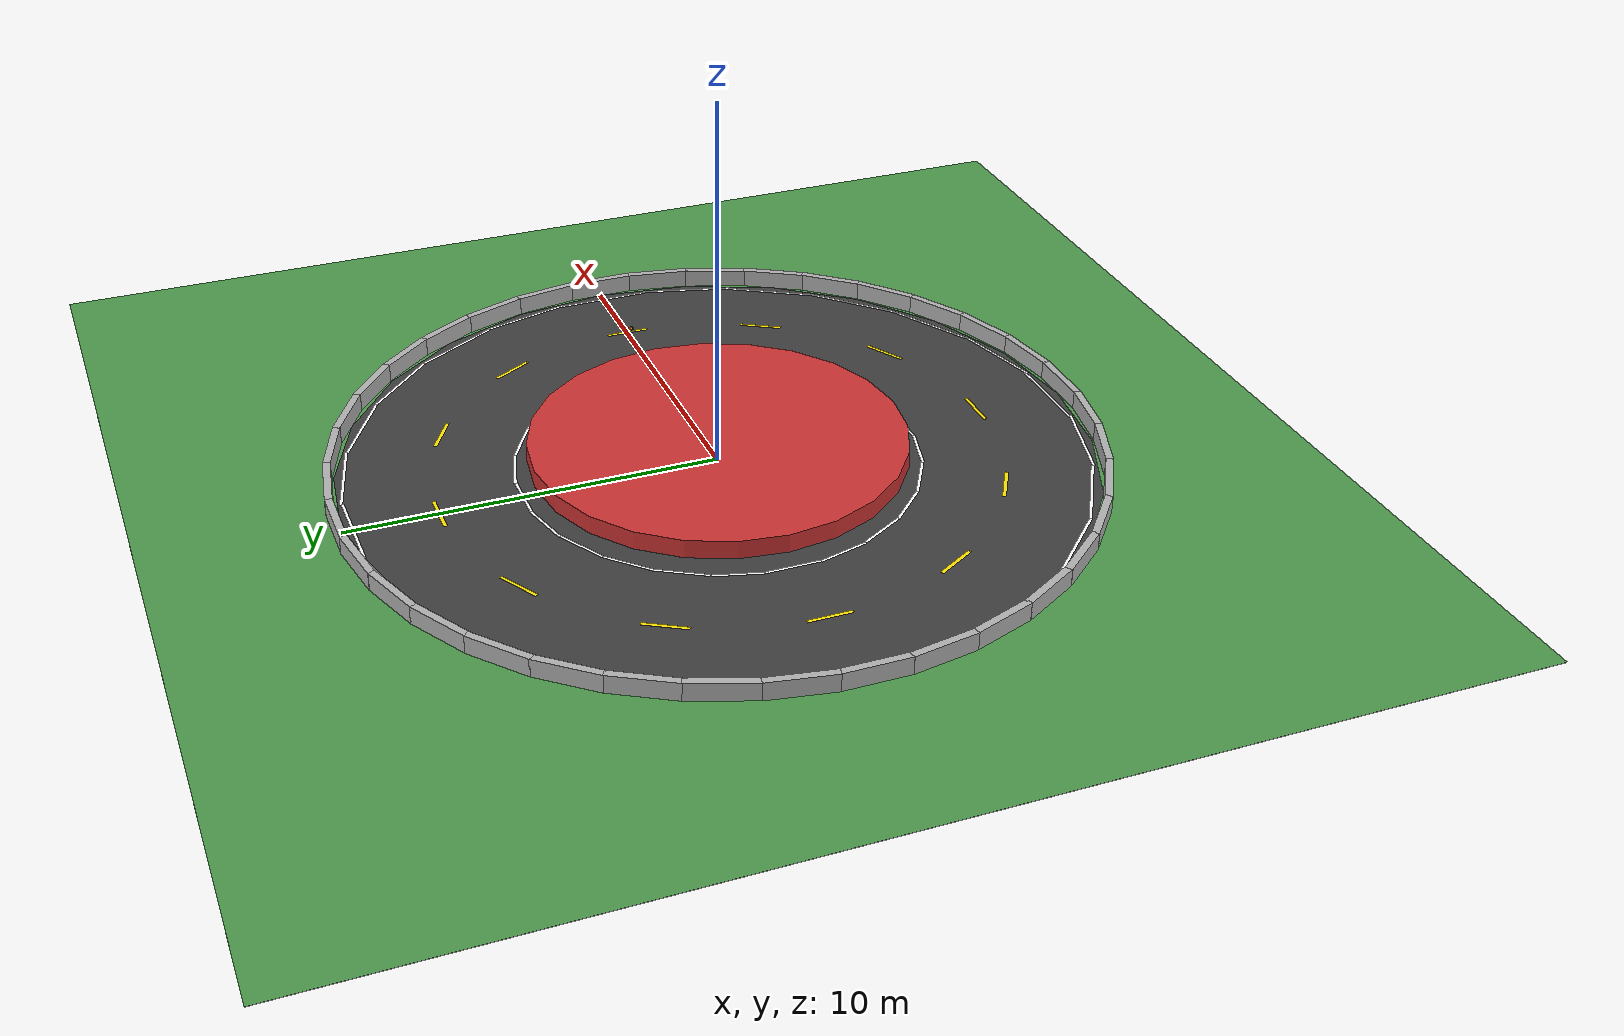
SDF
<?xml version="1.0" ?>
<sdf version="1.8">
  <world name="drift_track">

    <physics name="1ms" type="ignored">
      <max_step_size>0.001</max_step_size>
      <real_time_factor>1.0</real_time_factor>
    </physics>

    <plugin filename="gz-sim-physics-system"
            name="gz::sim::systems::Physics">
    </plugin>
    <plugin filename="gz-sim-scene-broadcaster-system"
            name="gz::sim::systems::SceneBroadcaster">
    </plugin>
    <plugin filename="gz-sim-user-commands-system"
            name="gz::sim::systems::UserCommands">
    </plugin>
    <plugin filename="gz-sim-sensors-system"
            name="gz::sim::systems::Sensors">
      <render_engine>ogre2</render_engine>
    </plugin>
    <plugin filename="gz-sim-imu-system"
            name="gz::sim::systems::Imu">
    </plugin>

    <!-- Lighting -->
    <light type="directional" name="sun">
      <cast_shadows>true</cast_shadows>
      <pose>0 0 15 0 0 0</pose>
      <diffuse>1.0 1.0 0.95 1</diffuse>
      <specular>0.3 0.3 0.3 1</specular>
      <direction>-0.3 0.1 -0.9</direction>
    </light>

    <light type="directional" name="ambient_light">
      <pose>0 0 10 0 0 0</pose>
      <diffuse>0.4 0.4 0.45 1</diffuse>
      <specular>0 0 0 1</specular>
      <direction>0 0 -1</direction>
    </light>

    <!-- ==================== GRASS (30x30m) ==================== -->
    <model name="grass">
      <static>true</static>
      <pose>0 0 0 0 0 0</pose>
      <link name="link">
        <collision name="collision">
          <geometry>
            <box>
              <size>30 30 0.01</size>
            </box>
          </geometry>
          <surface>
            <friction>
              <ode>
                <mu>0.6</mu>
                <mu2>0.6</mu2>
              </ode>
            </friction>
          </surface>
        </collision>
        <visual name="visual">
          <geometry>
            <box>
              <size>30 30 0.01</size>
            </box>
          </geometry>
          <material>
            <ambient>0.2 0.5 0.2 1</ambient>
            <diffuse>0.3 0.6 0.3 1</diffuse>
            <specular>0.1 0.1 0.1 1</specular>
          </material>
        </visual>
      </link>
    </model>

    <!-- ==================== CIRCULAR ROAD (10m radius) ==================== -->
    <model name="road">
      <static>true</static>
      <pose>0 0 0.005 0 0 0</pose>
      <link name="link">
        <collision name="collision">
          <geometry>
            <cylinder>
              <radius>10</radius>
              <length>0.01</length>
            </cylinder>
          </geometry>
          <surface>
            <friction>
              <ode>
                <mu>1.0</mu>
                <mu2>1.0</mu2>
              </ode>
            </friction>
          </surface>
        </collision>
        <visual name="visual">
          <geometry>
            <cylinder>
              <radius>10</radius>
              <length>0.01</length>
            </cylinder>
          </geometry>
          <material>
            <ambient>0.15 0.15 0.15 1</ambient>
            <diffuse>0.25 0.25 0.25 1</diffuse>
            <specular>0.1 0.1 0.1 1</specular>
          </material>
        </visual>
      </link>
    </model>

    <!-- ==================== CENTER OBSTACLE (5m radius cylinder) ==================== -->
    <model name="center_obstacle">
      <static>true</static>
      <pose>0 0 0.5 0 0 0</pose>
      <link name="link">
        <collision name="collision">
          <geometry>
            <cylinder>
              <radius>5</radius>
              <length>0.5</length>
            </cylinder>
          </geometry>
        </collision>
        <visual name="visual">
          <geometry>
            <cylinder>
              <radius>5</radius>
              <length>0.5</length>
            </cylinder>
          </geometry>
          <material>
            <ambient>0.6 0.1 0.1 1</ambient>
            <diffuse>0.8 0.2 0.2 1</diffuse>
            <specular>0.3 0.3 0.3 1</specular>
          </material>
        </visual>
      </link>
    </model>

    <!-- ==================== LANE MARKINGS ==================== -->
    <!-- Inner edge line (white) at 5.3m radius - 24 segments -->
    <model name="inner_line_00"><static>true</static><pose>5.3 0 0.012 0 0 0</pose>
      <link name="link"><visual name="v"><geometry><box><size>0.08 1.4 0.001</size></box></geometry>
      <material><ambient>1 1 1 1</ambient><diffuse>1 1 1 1</diffuse></material></visual></link></model>
    <model name="inner_line_01"><static>true</static><pose>5.14 1.37 0.012 0 0 0.2618</pose>
      <link name="link"><visual name="v"><geometry><box><size>0.08 1.4 0.001</size></box></geometry>
      <material><ambient>1 1 1 1</ambient><diffuse>1 1 1 1</diffuse></material></visual></link></model>
    <model name="inner_line_02"><static>true</static><pose>4.59 2.65 0.012 0 0 0.5236</pose>
      <link name="link"><visual name="v"><geometry><box><size>0.08 1.4 0.001</size></box></geometry>
      <material><ambient>1 1 1 1</ambient><diffuse>1 1 1 1</diffuse></material></visual></link></model>
    <model name="inner_line_03"><static>true</static><pose>3.75 3.75 0.012 0 0 0.7854</pose>
      <link name="link"><visual name="v"><geometry><box><size>0.08 1.4 0.001</size></box></geometry>
      <material><ambient>1 1 1 1</ambient><diffuse>1 1 1 1</diffuse></material></visual></link></model>
    <model name="inner_line_04"><static>true</static><pose>2.65 4.59 0.012 0 0 1.0472</pose>
      <link name="link"><visual name="v"><geometry><box><size>0.08 1.4 0.001</size></box></geometry>
      <material><ambient>1 1 1 1</ambient><diffuse>1 1 1 1</diffuse></material></visual></link></model>
    <model name="inner_line_05"><static>true</static><pose>1.37 5.14 0.012 0 0 1.3090</pose>
      <link name="link"><visual name="v"><geometry><box><size>0.08 1.4 0.001</size></box></geometry>
      <material><ambient>1 1 1 1</ambient><diffuse>1 1 1 1</diffuse></material></visual></link></model>
    <model name="inner_line_06"><static>true</static><pose>0 5.3 0.012 0 0 1.5708</pose>
      <link name="link"><visual name="v"><geometry><box><size>0.08 1.4 0.001</size></box></geometry>
      <material><ambient>1 1 1 1</ambient><diffuse>1 1 1 1</diffuse></material></visual></link></model>
    <model name="inner_line_07"><static>true</static><pose>-1.37 5.14 0.012 0 0 1.8326</pose>
      <link name="link"><visual name="v"><geometry><box><size>0.08 1.4 0.001</size></box></geometry>
      <material><ambient>1 1 1 1</ambient><diffuse>1 1 1 1</diffuse></material></visual></link></model>
    <model name="inner_line_08"><static>true</static><pose>-2.65 4.59 0.012 0 0 2.0944</pose>
      <link name="link"><visual name="v"><geometry><box><size>0.08 1.4 0.001</size></box></geometry>
      <material><ambient>1 1 1 1</ambient><diffuse>1 1 1 1</diffuse></material></visual></link></model>
    <model name="inner_line_09"><static>true</static><pose>-3.75 3.75 0.012 0 0 2.3562</pose>
      <link name="link"><visual name="v"><geometry><box><size>0.08 1.4 0.001</size></box></geometry>
      <material><ambient>1 1 1 1</ambient><diffuse>1 1 1 1</diffuse></material></visual></link></model>
    <model name="inner_line_10"><static>true</static><pose>-4.59 2.65 0.012 0 0 2.6180</pose>
      <link name="link"><visual name="v"><geometry><box><size>0.08 1.4 0.001</size></box></geometry>
      <material><ambient>1 1 1 1</ambient><diffuse>1 1 1 1</diffuse></material></visual></link></model>
    <model name="inner_line_11"><static>true</static><pose>-5.14 1.37 0.012 0 0 2.8798</pose>
      <link name="link"><visual name="v"><geometry><box><size>0.08 1.4 0.001</size></box></geometry>
      <material><ambient>1 1 1 1</ambient><diffuse>1 1 1 1</diffuse></material></visual></link></model>
    <model name="inner_line_12"><static>true</static><pose>-5.3 0 0.012 0 0 3.1416</pose>
      <link name="link"><visual name="v"><geometry><box><size>0.08 1.4 0.001</size></box></geometry>
      <material><ambient>1 1 1 1</ambient><diffuse>1 1 1 1</diffuse></material></visual></link></model>
    <model name="inner_line_13"><static>true</static><pose>-5.14 -1.37 0.012 0 0 3.4034</pose>
      <link name="link"><visual name="v"><geometry><box><size>0.08 1.4 0.001</size></box></geometry>
      <material><ambient>1 1 1 1</ambient><diffuse>1 1 1 1</diffuse></material></visual></link></model>
    <model name="inner_line_14"><static>true</static><pose>-4.59 -2.65 0.012 0 0 3.6652</pose>
      <link name="link"><visual name="v"><geometry><box><size>0.08 1.4 0.001</size></box></geometry>
      <material><ambient>1 1 1 1</ambient><diffuse>1 1 1 1</diffuse></material></visual></link></model>
    <model name="inner_line_15"><static>true</static><pose>-3.75 -3.75 0.012 0 0 3.9270</pose>
      <link name="link"><visual name="v"><geometry><box><size>0.08 1.4 0.001</size></box></geometry>
      <material><ambient>1 1 1 1</ambient><diffuse>1 1 1 1</diffuse></material></visual></link></model>
    <model name="inner_line_16"><static>true</static><pose>-2.65 -4.59 0.012 0 0 4.1888</pose>
      <link name="link"><visual name="v"><geometry><box><size>0.08 1.4 0.001</size></box></geometry>
      <material><ambient>1 1 1 1</ambient><diffuse>1 1 1 1</diffuse></material></visual></link></model>
    <model name="inner_line_17"><static>true</static><pose>-1.37 -5.14 0.012 0 0 4.4506</pose>
      <link name="link"><visual name="v"><geometry><box><size>0.08 1.4 0.001</size></box></geometry>
      <material><ambient>1 1 1 1</ambient><diffuse>1 1 1 1</diffuse></material></visual></link></model>
    <model name="inner_line_18"><static>true</static><pose>0 -5.3 0.012 0 0 4.7124</pose>
      <link name="link"><visual name="v"><geometry><box><size>0.08 1.4 0.001</size></box></geometry>
      <material><ambient>1 1 1 1</ambient><diffuse>1 1 1 1</diffuse></material></visual></link></model>
    <model name="inner_line_19"><static>true</static><pose>1.37 -5.14 0.012 0 0 4.9742</pose>
      <link name="link"><visual name="v"><geometry><box><size>0.08 1.4 0.001</size></box></geometry>
      <material><ambient>1 1 1 1</ambient><diffuse>1 1 1 1</diffuse></material></visual></link></model>
    <model name="inner_line_20"><static>true</static><pose>2.65 -4.59 0.012 0 0 5.2360</pose>
      <link name="link"><visual name="v"><geometry><box><size>0.08 1.4 0.001</size></box></geometry>
      <material><ambient>1 1 1 1</ambient><diffuse>1 1 1 1</diffuse></material></visual></link></model>
    <model name="inner_line_21"><static>true</static><pose>3.75 -3.75 0.012 0 0 5.4978</pose>
      <link name="link"><visual name="v"><geometry><box><size>0.08 1.4 0.001</size></box></geometry>
      <material><ambient>1 1 1 1</ambient><diffuse>1 1 1 1</diffuse></material></visual></link></model>
    <model name="inner_line_22"><static>true</static><pose>4.59 -2.65 0.012 0 0 5.7596</pose>
      <link name="link"><visual name="v"><geometry><box><size>0.08 1.4 0.001</size></box></geometry>
      <material><ambient>1 1 1 1</ambient><diffuse>1 1 1 1</diffuse></material></visual></link></model>
    <model name="inner_line_23"><static>true</static><pose>5.14 -1.37 0.012 0 0 6.0214</pose>
      <link name="link"><visual name="v"><geometry><box><size>0.08 1.4 0.001</size></box></geometry>
      <material><ambient>1 1 1 1</ambient><diffuse>1 1 1 1</diffuse></material></visual></link></model>

    <!-- Center line (yellow dashed) at 7.5m radius - 12 dashes -->
    <model name="center_line_00"><static>true</static><pose>7.5 0 0.012 0 0 0</pose>
      <link name="link"><visual name="v"><geometry><box><size>0.1 1.2 0.001</size></box></geometry>
      <material><ambient>1 0.9 0 1</ambient><diffuse>1 0.9 0 1</diffuse></material></visual></link></model>
    <model name="center_line_01"><static>true</static><pose>6.50 3.75 0.012 0 0 0.5236</pose>
      <link name="link"><visual name="v"><geometry><box><size>0.1 1.2 0.001</size></box></geometry>
      <material><ambient>1 0.9 0 1</ambient><diffuse>1 0.9 0 1</diffuse></material></visual></link></model>
    <model name="center_line_02"><static>true</static><pose>3.75 6.50 0.012 0 0 1.0472</pose>
      <link name="link"><visual name="v"><geometry><box><size>0.1 1.2 0.001</size></box></geometry>
      <material><ambient>1 0.9 0 1</ambient><diffuse>1 0.9 0 1</diffuse></material></visual></link></model>
    <model name="center_line_03"><static>true</static><pose>0 7.5 0.012 0 0 1.5708</pose>
      <link name="link"><visual name="v"><geometry><box><size>0.1 1.2 0.001</size></box></geometry>
      <material><ambient>1 0.9 0 1</ambient><diffuse>1 0.9 0 1</diffuse></material></visual></link></model>
    <model name="center_line_04"><static>true</static><pose>-3.75 6.50 0.012 0 0 2.0944</pose>
      <link name="link"><visual name="v"><geometry><box><size>0.1 1.2 0.001</size></box></geometry>
      <material><ambient>1 0.9 0 1</ambient><diffuse>1 0.9 0 1</diffuse></material></visual></link></model>
    <model name="center_line_05"><static>true</static><pose>-6.50 3.75 0.012 0 0 2.6180</pose>
      <link name="link"><visual name="v"><geometry><box><size>0.1 1.2 0.001</size></box></geometry>
      <material><ambient>1 0.9 0 1</ambient><diffuse>1 0.9 0 1</diffuse></material></visual></link></model>
    <model name="center_line_06"><static>true</static><pose>-7.5 0 0.012 0 0 3.1416</pose>
      <link name="link"><visual name="v"><geometry><box><size>0.1 1.2 0.001</size></box></geometry>
      <material><ambient>1 0.9 0 1</ambient><diffuse>1 0.9 0 1</diffuse></material></visual></link></model>
    <model name="center_line_07"><static>true</static><pose>-6.50 -3.75 0.012 0 0 3.6652</pose>
      <link name="link"><visual name="v"><geometry><box><size>0.1 1.2 0.001</size></box></geometry>
      <material><ambient>1 0.9 0 1</ambient><diffuse>1 0.9 0 1</diffuse></material></visual></link></model>
    <model name="center_line_08"><static>true</static><pose>-3.75 -6.50 0.012 0 0 4.1888</pose>
      <link name="link"><visual name="v"><geometry><box><size>0.1 1.2 0.001</size></box></geometry>
      <material><ambient>1 0.9 0 1</ambient><diffuse>1 0.9 0 1</diffuse></material></visual></link></model>
    <model name="center_line_09"><static>true</static><pose>0 -7.5 0.012 0 0 4.7124</pose>
      <link name="link"><visual name="v"><geometry><box><size>0.1 1.2 0.001</size></box></geometry>
      <material><ambient>1 0.9 0 1</ambient><diffuse>1 0.9 0 1</diffuse></material></visual></link></model>
    <model name="center_line_10"><static>true</static><pose>3.75 -6.50 0.012 0 0 5.2360</pose>
      <link name="link"><visual name="v"><geometry><box><size>0.1 1.2 0.001</size></box></geometry>
      <material><ambient>1 0.9 0 1</ambient><diffuse>1 0.9 0 1</diffuse></material></visual></link></model>
    <model name="center_line_11"><static>true</static><pose>6.50 -3.75 0.012 0 0 5.7596</pose>
      <link name="link"><visual name="v"><geometry><box><size>0.1 1.2 0.001</size></box></geometry>
      <material><ambient>1 0.9 0 1</ambient><diffuse>1 0.9 0 1</diffuse></material></visual></link></model>

    <!-- Outer edge line (white) at 9.7m radius - 24 segments -->
    <model name="outer_line_00"><static>true</static><pose>9.7 0 0.012 0 0 0</pose>
      <link name="link"><visual name="v"><geometry><box><size>0.08 2.6 0.001</size></box></geometry>
      <material><ambient>1 1 1 1</ambient><diffuse>1 1 1 1</diffuse></material></visual></link></model>
    <model name="outer_line_01"><static>true</static><pose>9.41 2.51 0.012 0 0 0.2618</pose>
      <link name="link"><visual name="v"><geometry><box><size>0.08 2.6 0.001</size></box></geometry>
      <material><ambient>1 1 1 1</ambient><diffuse>1 1 1 1</diffuse></material></visual></link></model>
    <model name="outer_line_02"><static>true</static><pose>8.40 4.85 0.012 0 0 0.5236</pose>
      <link name="link"><visual name="v"><geometry><box><size>0.08 2.6 0.001</size></box></geometry>
      <material><ambient>1 1 1 1</ambient><diffuse>1 1 1 1</diffuse></material></visual></link></model>
    <model name="outer_line_03"><static>true</static><pose>6.86 6.86 0.012 0 0 0.7854</pose>
      <link name="link"><visual name="v"><geometry><box><size>0.08 2.6 0.001</size></box></geometry>
      <material><ambient>1 1 1 1</ambient><diffuse>1 1 1 1</diffuse></material></visual></link></model>
    <model name="outer_line_04"><static>true</static><pose>4.85 8.40 0.012 0 0 1.0472</pose>
      <link name="link"><visual name="v"><geometry><box><size>0.08 2.6 0.001</size></box></geometry>
      <material><ambient>1 1 1 1</ambient><diffuse>1 1 1 1</diffuse></material></visual></link></model>
    <model name="outer_line_05"><static>true</static><pose>2.51 9.41 0.012 0 0 1.3090</pose>
      <link name="link"><visual name="v"><geometry><box><size>0.08 2.6 0.001</size></box></geometry>
      <material><ambient>1 1 1 1</ambient><diffuse>1 1 1 1</diffuse></material></visual></link></model>
    <model name="outer_line_06"><static>true</static><pose>0 9.7 0.012 0 0 1.5708</pose>
      <link name="link"><visual name="v"><geometry><box><size>0.08 2.6 0.001</size></box></geometry>
      <material><ambient>1 1 1 1</ambient><diffuse>1 1 1 1</diffuse></material></visual></link></model>
    <model name="outer_line_07"><static>true</static><pose>-2.51 9.41 0.012 0 0 1.8326</pose>
      <link name="link"><visual name="v"><geometry><box><size>0.08 2.6 0.001</size></box></geometry>
      <material><ambient>1 1 1 1</ambient><diffuse>1 1 1 1</diffuse></material></visual></link></model>
    <model name="outer_line_08"><static>true</static><pose>-4.85 8.40 0.012 0 0 2.0944</pose>
      <link name="link"><visual name="v"><geometry><box><size>0.08 2.6 0.001</size></box></geometry>
      <material><ambient>1 1 1 1</ambient><diffuse>1 1 1 1</diffuse></material></visual></link></model>
    <model name="outer_line_09"><static>true</static><pose>-6.86 6.86 0.012 0 0 2.3562</pose>
      <link name="link"><visual name="v"><geometry><box><size>0.08 2.6 0.001</size></box></geometry>
      <material><ambient>1 1 1 1</ambient><diffuse>1 1 1 1</diffuse></material></visual></link></model>
    <model name="outer_line_10"><static>true</static><pose>-8.40 4.85 0.012 0 0 2.6180</pose>
      <link name="link"><visual name="v"><geometry><box><size>0.08 2.6 0.001</size></box></geometry>
      <material><ambient>1 1 1 1</ambient><diffuse>1 1 1 1</diffuse></material></visual></link></model>
    <model name="outer_line_11"><static>true</static><pose>-9.41 2.51 0.012 0 0 2.8798</pose>
      <link name="link"><visual name="v"><geometry><box><size>0.08 2.6 0.001</size></box></geometry>
      <material><ambient>1 1 1 1</ambient><diffuse>1 1 1 1</diffuse></material></visual></link></model>
    <model name="outer_line_12"><static>true</static><pose>-9.7 0 0.012 0 0 3.1416</pose>
      <link name="link"><visual name="v"><geometry><box><size>0.08 2.6 0.001</size></box></geometry>
      <material><ambient>1 1 1 1</ambient><diffuse>1 1 1 1</diffuse></material></visual></link></model>
    <model name="outer_line_13"><static>true</static><pose>-9.41 -2.51 0.012 0 0 3.4034</pose>
      <link name="link"><visual name="v"><geometry><box><size>0.08 2.6 0.001</size></box></geometry>
      <material><ambient>1 1 1 1</ambient><diffuse>1 1 1 1</diffuse></material></visual></link></model>
    <model name="outer_line_14"><static>true</static><pose>-8.40 -4.85 0.012 0 0 3.6652</pose>
      <link name="link"><visual name="v"><geometry><box><size>0.08 2.6 0.001</size></box></geometry>
      <material><ambient>1 1 1 1</ambient><diffuse>1 1 1 1</diffuse></material></visual></link></model>
    <model name="outer_line_15"><static>true</static><pose>-6.86 -6.86 0.012 0 0 3.9270</pose>
      <link name="link"><visual name="v"><geometry><box><size>0.08 2.6 0.001</size></box></geometry>
      <material><ambient>1 1 1 1</ambient><diffuse>1 1 1 1</diffuse></material></visual></link></model>
    <model name="outer_line_16"><static>true</static><pose>-4.85 -8.40 0.012 0 0 4.1888</pose>
      <link name="link"><visual name="v"><geometry><box><size>0.08 2.6 0.001</size></box></geometry>
      <material><ambient>1 1 1 1</ambient><diffuse>1 1 1 1</diffuse></material></visual></link></model>
    <model name="outer_line_17"><static>true</static><pose>-2.51 -9.41 0.012 0 0 4.4506</pose>
      <link name="link"><visual name="v"><geometry><box><size>0.08 2.6 0.001</size></box></geometry>
      <material><ambient>1 1 1 1</ambient><diffuse>1 1 1 1</diffuse></material></visual></link></model>
    <model name="outer_line_18"><static>true</static><pose>0 -9.7 0.012 0 0 4.7124</pose>
      <link name="link"><visual name="v"><geometry><box><size>0.08 2.6 0.001</size></box></geometry>
      <material><ambient>1 1 1 1</ambient><diffuse>1 1 1 1</diffuse></material></visual></link></model>
    <model name="outer_line_19"><static>true</static><pose>2.51 -9.41 0.012 0 0 4.9742</pose>
      <link name="link"><visual name="v"><geometry><box><size>0.08 2.6 0.001</size></box></geometry>
      <material><ambient>1 1 1 1</ambient><diffuse>1 1 1 1</diffuse></material></visual></link></model>
    <model name="outer_line_20"><static>true</static><pose>4.85 -8.40 0.012 0 0 5.2360</pose>
      <link name="link"><visual name="v"><geometry><box><size>0.08 2.6 0.001</size></box></geometry>
      <material><ambient>1 1 1 1</ambient><diffuse>1 1 1 1</diffuse></material></visual></link></model>
    <model name="outer_line_21"><static>true</static><pose>6.86 -6.86 0.012 0 0 5.4978</pose>
      <link name="link"><visual name="v"><geometry><box><size>0.08 2.6 0.001</size></box></geometry>
      <material><ambient>1 1 1 1</ambient><diffuse>1 1 1 1</diffuse></material></visual></link></model>
    <model name="outer_line_22"><static>true</static><pose>8.40 -4.85 0.012 0 0 5.7596</pose>
      <link name="link"><visual name="v"><geometry><box><size>0.08 2.6 0.001</size></box></geometry>
      <material><ambient>1 1 1 1</ambient><diffuse>1 1 1 1</diffuse></material></visual></link></model>
    <model name="outer_line_23"><static>true</static><pose>9.41 -2.51 0.012 0 0 6.0214</pose>
      <link name="link"><visual name="v"><geometry><box><size>0.08 2.6 0.001</size></box></geometry>
      <material><ambient>1 1 1 1</ambient><diffuse>1 1 1 1</diffuse></material></visual></link></model>

    <!-- ==================== OUTER FENCE (annulus: inner 10m, outer 10.2m) ==================== -->
    <!-- 36 segments forming a continuous wall, each rotated tangent to circle -->
    <model name="fence_00"><static>true</static><pose>10.1 0 0.25 0 0 0</pose>
      <link name="link"><collision name="c"><geometry><box><size>0.2 1.8 0.5</size></box></geometry></collision>
      <visual name="v"><geometry><box><size>0.2 1.8 0.5</size></box></geometry>
      <material><ambient>0.5 0.5 0.5 1</ambient><diffuse>0.7 0.7 0.7 1</diffuse></material></visual></link></model>

    <model name="fence_01"><static>true</static><pose>9.95 1.76 0.25 0 0 0.1745</pose>
      <link name="link"><collision name="c"><geometry><box><size>0.2 1.8 0.5</size></box></geometry></collision>
      <visual name="v"><geometry><box><size>0.2 1.8 0.5</size></box></geometry>
      <material><ambient>0.5 0.5 0.5 1</ambient><diffuse>0.7 0.7 0.7 1</diffuse></material></visual></link></model>

    <model name="fence_02"><static>true</static><pose>9.49 3.46 0.25 0 0 0.3491</pose>
      <link name="link"><collision name="c"><geometry><box><size>0.2 1.8 0.5</size></box></geometry></collision>
      <visual name="v"><geometry><box><size>0.2 1.8 0.5</size></box></geometry>
      <material><ambient>0.5 0.5 0.5 1</ambient><diffuse>0.7 0.7 0.7 1</diffuse></material></visual></link></model>

    <model name="fence_03"><static>true</static><pose>8.75 5.05 0.25 0 0 0.5236</pose>
      <link name="link"><collision name="c"><geometry><box><size>0.2 1.8 0.5</size></box></geometry></collision>
      <visual name="v"><geometry><box><size>0.2 1.8 0.5</size></box></geometry>
      <material><ambient>0.5 0.5 0.5 1</ambient><diffuse>0.7 0.7 0.7 1</diffuse></material></visual></link></model>

    <model name="fence_04"><static>true</static><pose>7.74 6.50 0.25 0 0 0.6981</pose>
      <link name="link"><collision name="c"><geometry><box><size>0.2 1.8 0.5</size></box></geometry></collision>
      <visual name="v"><geometry><box><size>0.2 1.8 0.5</size></box></geometry>
      <material><ambient>0.5 0.5 0.5 1</ambient><diffuse>0.7 0.7 0.7 1</diffuse></material></visual></link></model>

    <model name="fence_05"><static>true</static><pose>6.50 7.74 0.25 0 0 0.8727</pose>
      <link name="link"><collision name="c"><geometry><box><size>0.2 1.8 0.5</size></box></geometry></collision>
      <visual name="v"><geometry><box><size>0.2 1.8 0.5</size></box></geometry>
      <material><ambient>0.5 0.5 0.5 1</ambient><diffuse>0.7 0.7 0.7 1</diffuse></material></visual></link></model>

    <model name="fence_06"><static>true</static><pose>5.05 8.75 0.25 0 0 1.0472</pose>
      <link name="link"><collision name="c"><geometry><box><size>0.2 1.8 0.5</size></box></geometry></collision>
      <visual name="v"><geometry><box><size>0.2 1.8 0.5</size></box></geometry>
      <material><ambient>0.5 0.5 0.5 1</ambient><diffuse>0.7 0.7 0.7 1</diffuse></material></visual></link></model>

    <model name="fence_07"><static>true</static><pose>3.46 9.49 0.25 0 0 1.2217</pose>
      <link name="link"><collision name="c"><geometry><box><size>0.2 1.8 0.5</size></box></geometry></collision>
      <visual name="v"><geometry><box><size>0.2 1.8 0.5</size></box></geometry>
      <material><ambient>0.5 0.5 0.5 1</ambient><diffuse>0.7 0.7 0.7 1</diffuse></material></visual></link></model>

    <model name="fence_08"><static>true</static><pose>1.76 9.95 0.25 0 0 1.3963</pose>
      <link name="link"><collision name="c"><geometry><box><size>0.2 1.8 0.5</size></box></geometry></collision>
      <visual name="v"><geometry><box><size>0.2 1.8 0.5</size></box></geometry>
      <material><ambient>0.5 0.5 0.5 1</ambient><diffuse>0.7 0.7 0.7 1</diffuse></material></visual></link></model>

    <model name="fence_09"><static>true</static><pose>0 10.1 0.25 0 0 1.5708</pose>
      <link name="link"><collision name="c"><geometry><box><size>0.2 1.8 0.5</size></box></geometry></collision>
      <visual name="v"><geometry><box><size>0.2 1.8 0.5</size></box></geometry>
      <material><ambient>0.5 0.5 0.5 1</ambient><diffuse>0.7 0.7 0.7 1</diffuse></material></visual></link></model>

    <model name="fence_10"><static>true</static><pose>-1.76 9.95 0.25 0 0 1.7453</pose>
      <link name="link"><collision name="c"><geometry><box><size>0.2 1.8 0.5</size></box></geometry></collision>
      <visual name="v"><geometry><box><size>0.2 1.8 0.5</size></box></geometry>
      <material><ambient>0.5 0.5 0.5 1</ambient><diffuse>0.7 0.7 0.7 1</diffuse></material></visual></link></model>

    <model name="fence_11"><static>true</static><pose>-3.46 9.49 0.25 0 0 1.9199</pose>
      <link name="link"><collision name="c"><geometry><box><size>0.2 1.8 0.5</size></box></geometry></collision>
      <visual name="v"><geometry><box><size>0.2 1.8 0.5</size></box></geometry>
      <material><ambient>0.5 0.5 0.5 1</ambient><diffuse>0.7 0.7 0.7 1</diffuse></material></visual></link></model>

    <model name="fence_12"><static>true</static><pose>-5.05 8.75 0.25 0 0 2.0944</pose>
      <link name="link"><collision name="c"><geometry><box><size>0.2 1.8 0.5</size></box></geometry></collision>
      <visual name="v"><geometry><box><size>0.2 1.8 0.5</size></box></geometry>
      <material><ambient>0.5 0.5 0.5 1</ambient><diffuse>0.7 0.7 0.7 1</diffuse></material></visual></link></model>

    <model name="fence_13"><static>true</static><pose>-6.50 7.74 0.25 0 0 2.2689</pose>
      <link name="link"><collision name="c"><geometry><box><size>0.2 1.8 0.5</size></box></geometry></collision>
      <visual name="v"><geometry><box><size>0.2 1.8 0.5</size></box></geometry>
      <material><ambient>0.5 0.5 0.5 1</ambient><diffuse>0.7 0.7 0.7 1</diffuse></material></visual></link></model>

    <model name="fence_14"><static>true</static><pose>-7.74 6.50 0.25 0 0 2.4435</pose>
      <link name="link"><collision name="c"><geometry><box><size>0.2 1.8 0.5</size></box></geometry></collision>
      <visual name="v"><geometry><box><size>0.2 1.8 0.5</size></box></geometry>
      <material><ambient>0.5 0.5 0.5 1</ambient><diffuse>0.7 0.7 0.7 1</diffuse></material></visual></link></model>

    <model name="fence_15"><static>true</static><pose>-8.75 5.05 0.25 0 0 2.6180</pose>
      <link name="link"><collision name="c"><geometry><box><size>0.2 1.8 0.5</size></box></geometry></collision>
      <visual name="v"><geometry><box><size>0.2 1.8 0.5</size></box></geometry>
      <material><ambient>0.5 0.5 0.5 1</ambient><diffuse>0.7 0.7 0.7 1</diffuse></material></visual></link></model>

    <model name="fence_16"><static>true</static><pose>-9.49 3.46 0.25 0 0 2.7925</pose>
      <link name="link"><collision name="c"><geometry><box><size>0.2 1.8 0.5</size></box></geometry></collision>
      <visual name="v"><geometry><box><size>0.2 1.8 0.5</size></box></geometry>
      <material><ambient>0.5 0.5 0.5 1</ambient><diffuse>0.7 0.7 0.7 1</diffuse></material></visual></link></model>

    <model name="fence_17"><static>true</static><pose>-9.95 1.76 0.25 0 0 2.9671</pose>
      <link name="link"><collision name="c"><geometry><box><size>0.2 1.8 0.5</size></box></geometry></collision>
      <visual name="v"><geometry><box><size>0.2 1.8 0.5</size></box></geometry>
      <material><ambient>0.5 0.5 0.5 1</ambient><diffuse>0.7 0.7 0.7 1</diffuse></material></visual></link></model>

    <model name="fence_18"><static>true</static><pose>-10.1 0 0.25 0 0 3.1416</pose>
      <link name="link"><collision name="c"><geometry><box><size>0.2 1.8 0.5</size></box></geometry></collision>
      <visual name="v"><geometry><box><size>0.2 1.8 0.5</size></box></geometry>
      <material><ambient>0.5 0.5 0.5 1</ambient><diffuse>0.7 0.7 0.7 1</diffuse></material></visual></link></model>

    <model name="fence_19"><static>true</static><pose>-9.95 -1.76 0.25 0 0 3.3161</pose>
      <link name="link"><collision name="c"><geometry><box><size>0.2 1.8 0.5</size></box></geometry></collision>
      <visual name="v"><geometry><box><size>0.2 1.8 0.5</size></box></geometry>
      <material><ambient>0.5 0.5 0.5 1</ambient><diffuse>0.7 0.7 0.7 1</diffuse></material></visual></link></model>

    <model name="fence_20"><static>true</static><pose>-9.49 -3.46 0.25 0 0 3.4907</pose>
      <link name="link"><collision name="c"><geometry><box><size>0.2 1.8 0.5</size></box></geometry></collision>
      <visual name="v"><geometry><box><size>0.2 1.8 0.5</size></box></geometry>
      <material><ambient>0.5 0.5 0.5 1</ambient><diffuse>0.7 0.7 0.7 1</diffuse></material></visual></link></model>

    <model name="fence_21"><static>true</static><pose>-8.75 -5.05 0.25 0 0 3.6652</pose>
      <link name="link"><collision name="c"><geometry><box><size>0.2 1.8 0.5</size></box></geometry></collision>
      <visual name="v"><geometry><box><size>0.2 1.8 0.5</size></box></geometry>
      <material><ambient>0.5 0.5 0.5 1</ambient><diffuse>0.7 0.7 0.7 1</diffuse></material></visual></link></model>

    <model name="fence_22"><static>true</static><pose>-7.74 -6.50 0.25 0 0 3.8397</pose>
      <link name="link"><collision name="c"><geometry><box><size>0.2 1.8 0.5</size></box></geometry></collision>
      <visual name="v"><geometry><box><size>0.2 1.8 0.5</size></box></geometry>
      <material><ambient>0.5 0.5 0.5 1</ambient><diffuse>0.7 0.7 0.7 1</diffuse></material></visual></link></model>

    <model name="fence_23"><static>true</static><pose>-6.50 -7.74 0.25 0 0 4.0143</pose>
      <link name="link"><collision name="c"><geometry><box><size>0.2 1.8 0.5</size></box></geometry></collision>
      <visual name="v"><geometry><box><size>0.2 1.8 0.5</size></box></geometry>
      <material><ambient>0.5 0.5 0.5 1</ambient><diffuse>0.7 0.7 0.7 1</diffuse></material></visual></link></model>

    <model name="fence_24"><static>true</static><pose>-5.05 -8.75 0.25 0 0 4.1888</pose>
      <link name="link"><collision name="c"><geometry><box><size>0.2 1.8 0.5</size></box></geometry></collision>
      <visual name="v"><geometry><box><size>0.2 1.8 0.5</size></box></geometry>
      <material><ambient>0.5 0.5 0.5 1</ambient><diffuse>0.7 0.7 0.7 1</diffuse></material></visual></link></model>

    <model name="fence_25"><static>true</static><pose>-3.46 -9.49 0.25 0 0 4.3633</pose>
      <link name="link"><collision name="c"><geometry><box><size>0.2 1.8 0.5</size></box></geometry></collision>
      <visual name="v"><geometry><box><size>0.2 1.8 0.5</size></box></geometry>
      <material><ambient>0.5 0.5 0.5 1</ambient><diffuse>0.7 0.7 0.7 1</diffuse></material></visual></link></model>

    <model name="fence_26"><static>true</static><pose>-1.76 -9.95 0.25 0 0 4.5379</pose>
      <link name="link"><collision name="c"><geometry><box><size>0.2 1.8 0.5</size></box></geometry></collision>
      <visual name="v"><geometry><box><size>0.2 1.8 0.5</size></box></geometry>
      <material><ambient>0.5 0.5 0.5 1</ambient><diffuse>0.7 0.7 0.7 1</diffuse></material></visual></link></model>

    <model name="fence_27"><static>true</static><pose>0 -10.1 0.25 0 0 4.7124</pose>
      <link name="link"><collision name="c"><geometry><box><size>0.2 1.8 0.5</size></box></geometry></collision>
      <visual name="v"><geometry><box><size>0.2 1.8 0.5</size></box></geometry>
      <material><ambient>0.5 0.5 0.5 1</ambient><diffuse>0.7 0.7 0.7 1</diffuse></material></visual></link></model>

    <model name="fence_28"><static>true</static><pose>1.76 -9.95 0.25 0 0 4.8869</pose>
      <link name="link"><collision name="c"><geometry><box><size>0.2 1.8 0.5</size></box></geometry></collision>
      <visual name="v"><geometry><box><size>0.2 1.8 0.5</size></box></geometry>
      <material><ambient>0.5 0.5 0.5 1</ambient><diffuse>0.7 0.7 0.7 1</diffuse></material></visual></link></model>

    <model name="fence_29"><static>true</static><pose>3.46 -9.49 0.25 0 0 5.0615</pose>
      <link name="link"><collision name="c"><geometry><box><size>0.2 1.8 0.5</size></box></geometry></collision>
      <visual name="v"><geometry><box><size>0.2 1.8 0.5</size></box></geometry>
      <material><ambient>0.5 0.5 0.5 1</ambient><diffuse>0.7 0.7 0.7 1</diffuse></material></visual></link></model>

    <model name="fence_30"><static>true</static><pose>5.05 -8.75 0.25 0 0 5.2360</pose>
      <link name="link"><collision name="c"><geometry><box><size>0.2 1.8 0.5</size></box></geometry></collision>
      <visual name="v"><geometry><box><size>0.2 1.8 0.5</size></box></geometry>
      <material><ambient>0.5 0.5 0.5 1</ambient><diffuse>0.7 0.7 0.7 1</diffuse></material></visual></link></model>

    <model name="fence_31"><static>true</static><pose>6.50 -7.74 0.25 0 0 5.4105</pose>
      <link name="link"><collision name="c"><geometry><box><size>0.2 1.8 0.5</size></box></geometry></collision>
      <visual name="v"><geometry><box><size>0.2 1.8 0.5</size></box></geometry>
      <material><ambient>0.5 0.5 0.5 1</ambient><diffuse>0.7 0.7 0.7 1</diffuse></material></visual></link></model>

    <model name="fence_32"><static>true</static><pose>7.74 -6.50 0.25 0 0 5.5851</pose>
      <link name="link"><collision name="c"><geometry><box><size>0.2 1.8 0.5</size></box></geometry></collision>
      <visual name="v"><geometry><box><size>0.2 1.8 0.5</size></box></geometry>
      <material><ambient>0.5 0.5 0.5 1</ambient><diffuse>0.7 0.7 0.7 1</diffuse></material></visual></link></model>

    <model name="fence_33"><static>true</static><pose>8.75 -5.05 0.25 0 0 5.7596</pose>
      <link name="link"><collision name="c"><geometry><box><size>0.2 1.8 0.5</size></box></geometry></collision>
      <visual name="v"><geometry><box><size>0.2 1.8 0.5</size></box></geometry>
      <material><ambient>0.5 0.5 0.5 1</ambient><diffuse>0.7 0.7 0.7 1</diffuse></material></visual></link></model>

    <model name="fence_34"><static>true</static><pose>9.49 -3.46 0.25 0 0 5.9341</pose>
      <link name="link"><collision name="c"><geometry><box><size>0.2 1.8 0.5</size></box></geometry></collision>
      <visual name="v"><geometry><box><size>0.2 1.8 0.5</size></box></geometry>
      <material><ambient>0.5 0.5 0.5 1</ambient><diffuse>0.7 0.7 0.7 1</diffuse></material></visual></link></model>

    <model name="fence_35"><static>true</static><pose>9.95 -1.76 0.25 0 0 6.1087</pose>
      <link name="link"><collision name="c"><geometry><box><size>0.2 1.8 0.5</size></box></geometry></collision>
      <visual name="v"><geometry><box><size>0.2 1.8 0.5</size></box></geometry>
      <material><ambient>0.5 0.5 0.5 1</ambient><diffuse>0.7 0.7 0.7 1</diffuse></material></visual></link></model>

    <!-- ==================== DRIFT CAR ==================== -->
    <include>
      <uri>model://drift_car</uri>
      <pose>7.5 0 0.05 0 0 1.5708</pose>
    </include>

  </world>
</sdf>

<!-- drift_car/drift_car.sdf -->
<sdf version="1.8">
  <model name="drift_car">

    <!-- ==================== CHASSIS ==================== -->
    <link name="base_link">
      <pose>0 0 0.048 0 0 0</pose>

      <inertial>
        <mass>1.0</mass>
        <pose>0 0 0 0 0 0</pose>
        <inertia>
          <ixx>0.00192</ixx>
          <ixy>0</ixy>
          <ixz>0</ixz>
          <iyy>0.00763</iyy>
          <iyz>0</iyz>
          <izz>0.00938</izz>
        </inertia>
      </inertial>

      <!-- Main body (lower) -->
      <visual name="chassis_visual">
        <geometry>
          <box>
            <size>0.30 0.15 0.04</size>
          </box>
        </geometry>
        <material>
          <ambient>0.9 0.4 0.0 1</ambient>
          <diffuse>1.0 0.5 0.0 1</diffuse>
          <specular>0.5 0.5 0.5 1</specular>
        </material>
      </visual>

      <!-- Cabin/roof -->
      <visual name="cabin_visual">
        <pose>0.02 0 0.035 0 0 0</pose>
        <geometry>
          <box>
            <size>0.12 0.13 0.03</size>
          </box>
        </geometry>
        <material>
          <ambient>0.1 0.1 0.1 1</ambient>
          <diffuse>0.15 0.15 0.15 1</diffuse>
          <specular>0.8 0.8 0.8 1</specular>
        </material>
      </visual>

      <!-- Hood (front slope) -->
      <visual name="hood_visual">
        <pose>0.11 0 0.025 0 0.2 0</pose>
        <geometry>
          <box>
            <size>0.08 0.14 0.015</size>
          </box>
        </geometry>
        <material>
          <ambient>0.9 0.4 0.0 1</ambient>
          <diffuse>1.0 0.5 0.0 1</diffuse>
          <specular>0.5 0.5 0.5 1</specular>
        </material>
      </visual>

      <!-- Rear spoiler -->
      <visual name="spoiler_visual">
        <pose>-0.14 0 0.05 0 0 0</pose>
        <geometry>
          <box>
            <size>0.02 0.16 0.02</size>
          </box>
        </geometry>
        <material>
          <ambient>0.1 0.1 0.1 1</ambient>
          <diffuse>0.2 0.2 0.2 1</diffuse>
          <specular>0.3 0.3 0.3 1</specular>
        </material>
      </visual>

      <!-- Spoiler supports -->
      <visual name="spoiler_left_support">
        <pose>-0.14 0.06 0.035 0 0 0</pose>
        <geometry>
          <box>
            <size>0.01 0.01 0.03</size>
          </box>
        </geometry>
        <material>
          <ambient>0.1 0.1 0.1 1</ambient>
          <diffuse>0.2 0.2 0.2 1</diffuse>
        </material>
      </visual>
      <visual name="spoiler_right_support">
        <pose>-0.14 -0.06 0.035 0 0 0</pose>
        <geometry>
          <box>
            <size>0.01 0.01 0.03</size>
          </box>
        </geometry>
        <material>
          <ambient>0.1 0.1 0.1 1</ambient>
          <diffuse>0.2 0.2 0.2 1</diffuse>
        </material>
      </visual>

      <!-- Headlights -->
      <visual name="headlight_left">
        <pose>0.15 0.05 0.01 0 0 0</pose>
        <geometry>
          <box>
            <size>0.01 0.03 0.015</size>
          </box>
        </geometry>
        <material>
          <ambient>1 1 0.8 1</ambient>
          <diffuse>1 1 0.9 1</diffuse>
          <emissive>0.5 0.5 0.3 1</emissive>
        </material>
      </visual>
      <visual name="headlight_right">
        <pose>0.15 -0.05 0.01 0 0 0</pose>
        <geometry>
          <box>
            <size>0.01 0.03 0.015</size>
          </box>
        </geometry>
        <material>
          <ambient>1 1 0.8 1</ambient>
          <diffuse>1 1 0.9 1</diffuse>
          <emissive>0.5 0.5 0.3 1</emissive>
        </material>
      </visual>

      <!-- Taillights -->
      <visual name="taillight_left">
        <pose>-0.15 0.05 0.01 0 0 0</pose>
        <geometry>
          <box>
            <size>0.01 0.03 0.015</size>
          </box>
        </geometry>
        <material>
          <ambient>0.8 0 0 1</ambient>
          <diffuse>1 0 0 1</diffuse>
          <emissive>0.5 0 0 1</emissive>
        </material>
      </visual>
      <visual name="taillight_right">
        <pose>-0.15 -0.05 0.01 0 0 0</pose>
        <geometry>
          <box>
            <size>0.01 0.03 0.015</size>
          </box>
        </geometry>
        <material>
          <ambient>0.8 0 0 1</ambient>
          <diffuse>1 0 0 1</diffuse>
          <emissive>0.5 0 0 1</emissive>
        </material>
      </visual>

      <!-- Racing stripe (center) -->
      <visual name="stripe_visual">
        <pose>0 0 0.021 0 0 0</pose>
        <geometry>
          <box>
            <size>0.30 0.03 0.001</size>
          </box>
        </geometry>
        <material>
          <ambient>1 1 1 1</ambient>
          <diffuse>1 1 1 1</diffuse>
        </material>
      </visual>

      <collision name="chassis_collision">
        <geometry>
          <box>
            <size>0.30 0.15 0.04</size>
          </box>
        </geometry>
      </collision>

      <!-- IMU Sensor -->
      <sensor name="imu_sensor" type="imu">
        <always_on>true</always_on>
        <update_rate>100</update_rate>
        <visualize>false</visualize>
        <imu>
          <angular_velocity>
            <x>
              <noise type="gaussian">
                <mean>0.0</mean>
                <stddev>0.0002</stddev>
              </noise>
            </x>
            <y>
              <noise type="gaussian">
                <mean>0.0</mean>
                <stddev>0.0002</stddev>
              </noise>
            </y>
            <z>
              <noise type="gaussian">
                <mean>0.0</mean>
                <stddev>0.0002</stddev>
              </noise>
            </z>
          </angular_velocity>
          <linear_acceleration>
            <x>
              <noise type="gaussian">
                <mean>0.0</mean>
                <stddev>0.017</stddev>
              </noise>
            </x>
            <y>
              <noise type="gaussian">
                <mean>0.0</mean>
                <stddev>0.017</stddev>
              </noise>
            </y>
            <z>
              <noise type="gaussian">
                <mean>0.0</mean>
                <stddev>0.017</stddev>
              </noise>
            </z>
          </linear_acceleration>
        </imu>
      </sensor>
    </link>

    <!-- ==================== REAR LEFT WHEEL ==================== -->
    <link name="rear_left_wheel">
      <pose relative_to="rear_left_wheel_joint">0 0 0 0 0 0</pose>

      <inertial>
        <mass>0.125</mass>
        <inertia>
          <ixx>0.000038</ixx>
          <ixy>0</ixy>
          <ixz>0</ixz>
          <iyy>0.000038</iyy>
          <iyz>0</iyz>
          <izz>0.000068</izz>
        </inertia>
      </inertial>

      <!-- Tire -->
      <visual name="tire_visual">
        <geometry>
          <cylinder>
            <radius>0.033</radius>
            <length>0.02</length>
          </cylinder>
        </geometry>
        <material>
          <ambient>0.1 0.1 0.1 1</ambient>
          <diffuse>0.15 0.15 0.15 1</diffuse>
          <specular>0.1 0.1 0.1 1</specular>
        </material>
      </visual>
      <!-- Rim -->
      <visual name="rim_visual">
        <geometry>
          <cylinder>
            <radius>0.02</radius>
            <length>0.021</length>
          </cylinder>
        </geometry>
        <material>
          <ambient>0.7 0.7 0.7 1</ambient>
          <diffuse>0.9 0.9 0.9 1</diffuse>
          <specular>1 1 1 1</specular>
        </material>
      </visual>

      <collision name="collision">
        <geometry>
          <sphere>
            <radius>0.033</radius>
          </sphere>
        </geometry>
        <surface>
          <friction>
            <ode>
              <mu>0.3</mu>
              <mu2>0.15</mu2>
              <slip1>0.1</slip1>
              <slip2>0.3</slip2>
            </ode>
          </friction>
        </surface>
      </collision>
    </link>

    <joint name="rear_left_wheel_joint" type="revolute">
      <pose relative_to="base_link">-0.13 0.09 -0.015 -1.5708 0 0</pose>
      <parent>base_link</parent>
      <child>rear_left_wheel</child>
      <axis>
        <xyz>0 0 1</xyz>
        <limit>
          <lower>-1.79769e+308</lower>
          <upper>1.79769e+308</upper>
          <effort>10</effort>
          <velocity>100</velocity>
        </limit>
        <dynamics>
          <damping>0.001</damping>
          <friction>0.001</friction>
        </dynamics>
      </axis>
    </joint>

    <!-- ==================== REAR RIGHT WHEEL ==================== -->
    <link name="rear_right_wheel">
      <pose relative_to="rear_right_wheel_joint">0 0 0 0 0 0</pose>

      <inertial>
        <mass>0.125</mass>
        <inertia>
          <ixx>0.000038</ixx>
          <ixy>0</ixy>
          <ixz>0</ixz>
          <iyy>0.000038</iyy>
          <iyz>0</iyz>
          <izz>0.000068</izz>
        </inertia>
      </inertial>

      <!-- Tire -->
      <visual name="tire_visual">
        <geometry>
          <cylinder>
            <radius>0.033</radius>
            <length>0.02</length>
          </cylinder>
        </geometry>
        <material>
          <ambient>0.1 0.1 0.1 1</ambient>
          <diffuse>0.15 0.15 0.15 1</diffuse>
          <specular>0.1 0.1 0.1 1</specular>
        </material>
      </visual>
      <!-- Rim -->
      <visual name="rim_visual">
        <geometry>
          <cylinder>
            <radius>0.02</radius>
            <length>0.021</length>
          </cylinder>
        </geometry>
        <material>
          <ambient>0.7 0.7 0.7 1</ambient>
          <diffuse>0.9 0.9 0.9 1</diffuse>
          <specular>1 1 1 1</specular>
        </material>
      </visual>

      <collision name="collision">
        <geometry>
          <sphere>
            <radius>0.033</radius>
          </sphere>
        </geometry>
        <surface>
          <friction>
            <ode>
              <mu>0.3</mu>
              <mu2>0.15</mu2>
              <slip1>0.1</slip1>
              <slip2>0.3</slip2>
            </ode>
          </friction>
        </surface>
      </collision>
    </link>

    <joint name="rear_right_wheel_joint" type="revolute">
      <pose relative_to="base_link">-0.13 -0.09 -0.015 -1.5708 0 0</pose>
      <parent>base_link</parent>
      <child>rear_right_wheel</child>
      <axis>
        <xyz>0 0 1</xyz>
        <limit>
          <lower>-1.79769e+308</lower>
          <upper>1.79769e+308</upper>
          <effort>10</effort>
          <velocity>100</velocity>
        </limit>
        <dynamics>
          <damping>0.001</damping>
          <friction>0.001</friction>
        </dynamics>
      </axis>
    </joint>

    <!-- ==================== FRONT LEFT STEERING + WHEEL ==================== -->
    <link name="front_left_steering_link">
      <pose relative_to="front_left_steering_joint">0 0 0 0 0 0</pose>

      <inertial>
        <mass>0.01</mass>
        <inertia>
          <ixx>0.000001</ixx>
          <ixy>0</ixy>
          <ixz>0</ixz>
          <iyy>0.000001</iyy>
          <iyz>0</iyz>
          <izz>0.000001</izz>
        </inertia>
      </inertial>
    </link>

    <joint name="front_left_steering_joint" type="revolute">
      <pose relative_to="base_link">0.13 0.09 -0.015 0 0 0</pose>
      <parent>base_link</parent>
      <child>front_left_steering_link</child>
      <axis>
        <xyz>0 0 1</xyz>
        <limit>
          <lower>-0.6</lower>
          <upper>0.6</upper>
          <effort>10</effort>
          <velocity>5</velocity>
        </limit>
        <dynamics>
          <damping>0.01</damping>
          <friction>0.0</friction>
        </dynamics>
      </axis>
    </joint>

    <link name="front_left_wheel">
      <pose relative_to="front_left_wheel_joint">0 0 0 0 0 0</pose>

      <inertial>
        <mass>0.125</mass>
        <inertia>
          <ixx>0.000038</ixx>
          <ixy>0</ixy>
          <ixz>0</ixz>
          <iyy>0.000038</iyy>
          <iyz>0</iyz>
          <izz>0.000068</izz>
        </inertia>
      </inertial>

      <!-- Tire -->
      <visual name="tire_visual">
        <geometry>
          <cylinder>
            <radius>0.033</radius>
            <length>0.02</length>
          </cylinder>
        </geometry>
        <material>
          <ambient>0.1 0.1 0.1 1</ambient>
          <diffuse>0.15 0.15 0.15 1</diffuse>
          <specular>0.1 0.1 0.1 1</specular>
        </material>
      </visual>
      <!-- Rim -->
      <visual name="rim_visual">
        <geometry>
          <cylinder>
            <radius>0.02</radius>
            <length>0.021</length>
          </cylinder>
        </geometry>
        <material>
          <ambient>0.7 0.7 0.7 1</ambient>
          <diffuse>0.9 0.9 0.9 1</diffuse>
          <specular>1 1 1 1</specular>
        </material>
      </visual>

      <collision name="collision">
        <geometry>
          <sphere>
            <radius>0.033</radius>
          </sphere>
        </geometry>
        <surface>
          <friction>
            <ode>
              <mu>1.0</mu>
              <mu2>1.0</mu2>
              <slip1>0.0</slip1>
              <slip2>0.0</slip2>
            </ode>
          </friction>
        </surface>
      </collision>
    </link>

    <joint name="front_left_wheel_joint" type="revolute">
      <pose relative_to="front_left_steering_link">0 0 0 -1.5708 0 0</pose>
      <parent>front_left_steering_link</parent>
      <child>front_left_wheel</child>
      <axis>
        <xyz>0 0 1</xyz>
        <limit>
          <lower>-1.79769e+308</lower>
          <upper>1.79769e+308</upper>
          <effort>0</effort>
          <velocity>100</velocity>
        </limit>
        <dynamics>
          <damping>0.0001</damping>
          <friction>0.0001</friction>
        </dynamics>
      </axis>
    </joint>

    <!-- ==================== FRONT RIGHT STEERING + WHEEL ==================== -->
    <link name="front_right_steering_link">
      <pose relative_to="front_right_steering_joint">0 0 0 0 0 0</pose>

      <inertial>
        <mass>0.01</mass>
        <inertia>
          <ixx>0.000001</ixx>
          <ixy>0</ixy>
          <ixz>0</ixz>
          <iyy>0.000001</iyy>
          <iyz>0</iyz>
          <izz>0.000001</izz>
        </inertia>
      </inertial>
    </link>

    <joint name="front_right_steering_joint" type="revolute">
      <pose relative_to="base_link">0.13 -0.09 -0.015 0 0 0</pose>
      <parent>base_link</parent>
      <child>front_right_steering_link</child>
      <axis>
        <xyz>0 0 1</xyz>
        <limit>
          <lower>-0.6</lower>
          <upper>0.6</upper>
          <effort>10</effort>
          <velocity>5</velocity>
        </limit>
        <dynamics>
          <damping>0.01</damping>
          <friction>0.0</friction>
        </dynamics>
      </axis>
    </joint>

    <link name="front_right_wheel">
      <pose relative_to="front_right_wheel_joint">0 0 0 0 0 0</pose>

      <inertial>
        <mass>0.125</mass>
        <inertia>
          <ixx>0.000038</ixx>
          <ixy>0</ixy>
          <ixz>0</ixz>
          <iyy>0.000038</iyy>
          <iyz>0</iyz>
          <izz>0.000068</izz>
        </inertia>
      </inertial>

      <!-- Tire -->
      <visual name="tire_visual">
        <geometry>
          <cylinder>
            <radius>0.033</radius>
            <length>0.02</length>
          </cylinder>
        </geometry>
        <material>
          <ambient>0.1 0.1 0.1 1</ambient>
          <diffuse>0.15 0.15 0.15 1</diffuse>
          <specular>0.1 0.1 0.1 1</specular>
        </material>
      </visual>
      <!-- Rim -->
      <visual name="rim_visual">
        <geometry>
          <cylinder>
            <radius>0.02</radius>
            <length>0.021</length>
          </cylinder>
        </geometry>
        <material>
          <ambient>0.7 0.7 0.7 1</ambient>
          <diffuse>0.9 0.9 0.9 1</diffuse>
          <specular>1 1 1 1</specular>
        </material>
      </visual>

      <collision name="collision">
        <geometry>
          <sphere>
            <radius>0.033</radius>
          </sphere>
        </geometry>
        <surface>
          <friction>
            <ode>
              <mu>1.0</mu>
              <mu2>1.0</mu2>
              <slip1>0.0</slip1>
              <slip2>0.0</slip2>
            </ode>
          </friction>
        </surface>
      </collision>
    </link>

    <joint name="front_right_wheel_joint" type="revolute">
      <pose relative_to="front_right_steering_link">0 0 0 -1.5708 0 0</pose>
      <parent>front_right_steering_link</parent>
      <child>front_right_wheel</child>
      <axis>
        <xyz>0 0 1</xyz>
        <limit>
          <lower>-1.79769e+308</lower>
          <upper>1.79769e+308</upper>
          <effort>0</effort>
          <velocity>100</velocity>
        </limit>
        <dynamics>
          <damping>0.0001</damping>
          <friction>0.0001</friction>
        </dynamics>
      </axis>
    </joint>

    <!-- ==================== ACKERMANN STEERING PLUGIN ==================== -->
    <plugin
      filename="gz-sim-ackermann-steering-system"
      name="gz::sim::systems::AckermannSteering">

      <!-- Drive wheels (rear) -->
      <left_joint>rear_left_wheel_joint</left_joint>
      <right_joint>rear_right_wheel_joint</right_joint>

      <!-- Steering joints (front) -->
      <left_steering_joint>front_left_steering_joint</left_steering_joint>
      <right_steering_joint>front_right_steering_joint</right_steering_joint>

      <!-- Geometry -->
      <wheel_base>0.26</wheel_base>
      <wheel_separation>0.18</wheel_separation>
      <kingpin_width>0.16</kingpin_width>
      <wheel_radius>0.033</wheel_radius>
      <steering_limit>0.6</steering_limit>

      <!-- Velocity limits -->
      <min_velocity>-3.0</min_velocity>
      <max_velocity>3.0</max_velocity>
      <min_acceleration>-2.0</min_acceleration>
      <max_acceleration>2.0</max_acceleration>

      <!-- Odometry -->
      <odom_publish_frequency>50</odom_publish_frequency>
      <odom_topic>odometry</odom_topic>
      <tf_topic>tf</tf_topic>
      <frame_id>odom</frame_id>
      <child_frame_id>base_link</child_frame_id>

    </plugin>

    <!-- Publish joint states for monitoring -->
    <plugin
      filename="gz-sim-joint-state-publisher-system"
      name="gz::sim::systems::JointStatePublisher">
      <joint_name>front_left_steering_joint</joint_name>
      <joint_name>front_right_steering_joint</joint_name>
      <joint_name>front_left_wheel_joint</joint_name>
      <joint_name>front_right_wheel_joint</joint_name>
      <joint_name>rear_left_wheel_joint</joint_name>
      <joint_name>rear_right_wheel_joint</joint_name>
    </plugin>

  </model>
</sdf>
